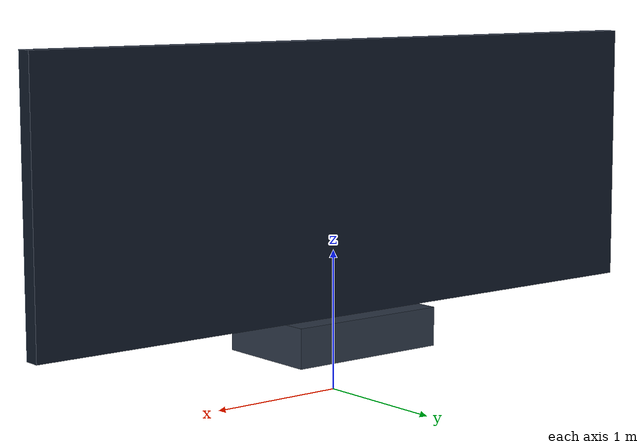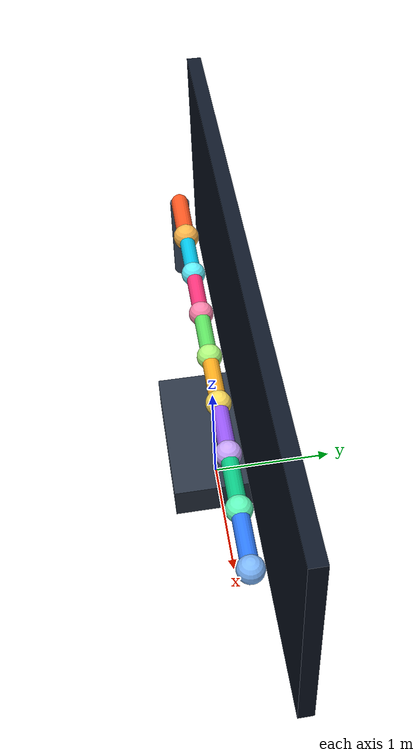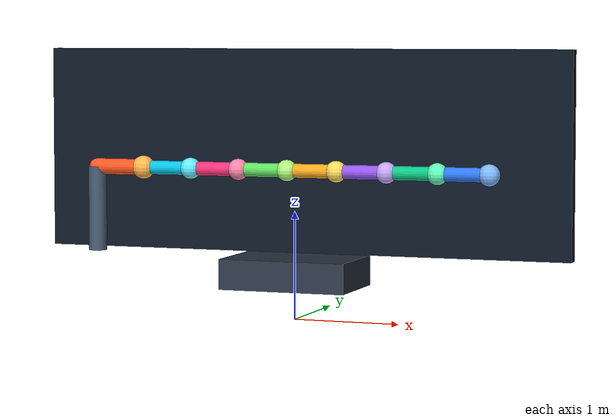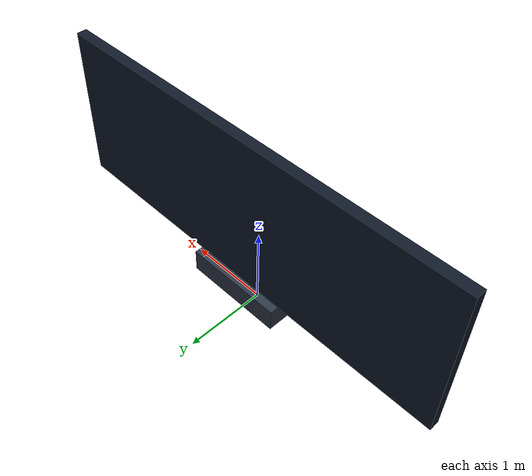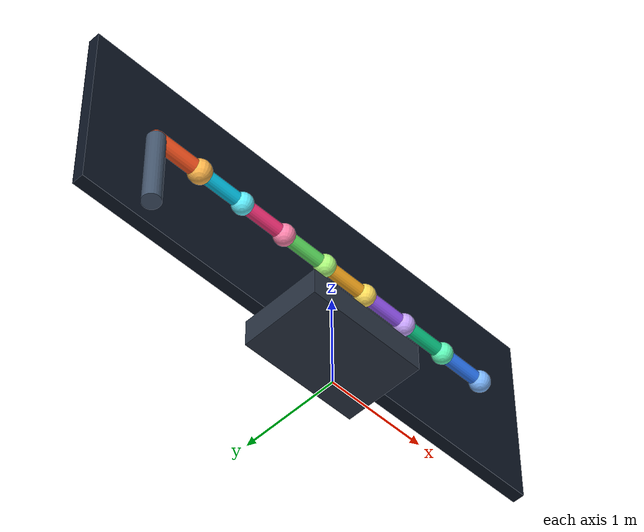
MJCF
<!-- Copyright 2026 The MuJoCo Metal contributors; Apache-2.0. -->
<mujoco model="implicit_wave_lattice">
  <compiler angle="radian" inertiafromgeom="true"/>
  <option timestep=".004" integrator="implicitfast" gravity="0 0 0">
    <flag contact="disable"/>
  </option>
  <visual>
    <global offwidth="1280" offheight="720"/>
    <headlight ambient=".72 .72 .72" diffuse=".92 .92 .92" specular=".32 .32 .32"/>
  </visual>
  <default>
    <joint damping=".06" stiffness=".65"/>
    <geom contype="0" conaffinity="0" density="360"/>
  </default>
  <worldbody>
    <light pos="0 -2 4" dir="0 0 -1" diffuse="1 .94 .82"/>
    <geom name="backdrop" type="box" pos="0 .25 1.55" size="2.55 .06 .95" rgba=".055 .09 .15 1"/>
    <geom name="base" type="box" pos="0 0 .44" size=".6 .4 .14" rgba=".17 .21 .27 1"/>
    <geom name="mast" type="cylinder" pos="-2 0 .98" size=".085 .4" rgba=".27 .34 .43 1"/>
    <body name="wave_00" pos="-2 0 1.38">
      <joint name="drive" type="hinge" axis="0 1 0" damping=".08"/>
      <geom name="link_00" type="capsule" fromto="0 0 0 .48 0 0" size=".075" rgba="1 .34 .13 1"/>
      <geom type="sphere" pos=".48 0 0" size=".11" rgba="1 .72 .3 1"/>
      <body name="wave_01" pos=".48 0 0">
        <joint name="joint_01" type="ball" damping=".045" stiffness=".72"/>
        <geom name="link_01" type="capsule" fromto="0 0 0 .48 0 0" size=".065" rgba=".02 .77 .91 1"/>
        <geom type="sphere" pos=".48 0 0" size=".10" rgba=".38 .94 1 1"/>
        <body name="wave_02" pos=".48 0 0">
          <joint name="joint_02" type="hinge" axis="0 1 0" damping=".06" stiffness=".65"/>
          <geom name="link_02" type="capsule" fromto="0 0 0 .48 0 0" size=".065" rgba=".98 .2 .48 1"/>
          <geom type="sphere" pos=".48 0 0" size=".10" rgba="1 .52 .68 1"/>
          <body name="wave_03" pos=".48 0 0">
            <joint name="joint_03" type="ball" damping=".045" stiffness=".72"/>
            <geom name="link_03" type="capsule" fromto="0 0 0 .48 0 0" size=".065" rgba=".37 .88 .38 1"/>
            <geom type="sphere" pos=".48 0 0" size=".10" rgba=".69 1 .49 1"/>
            <body name="wave_04" pos=".48 0 0">
              <joint name="joint_04" type="hinge" axis="0 1 0" damping=".06" stiffness=".65"/>
              <geom name="link_04" type="capsule" fromto="0 0 0 .48 0 0" size=".065" rgba=".98 .67 .12 1"/>
              <geom type="sphere" pos=".48 0 0" size=".10" rgba="1 .87 .36 1"/>
              <body name="wave_05" pos=".48 0 0">
                <joint name="joint_05" type="ball" damping=".045" stiffness=".72"/>
                <geom name="link_05" type="capsule" fromto="0 0 0 .48 0 0" size=".065" rgba=".59 .34 .96 1"/>
                <geom type="sphere" pos=".48 0 0" size=".10" rgba=".79 .65 1 1"/>
                <body name="wave_06" pos=".48 0 0">
                  <joint name="joint_06" type="hinge" axis="0 1 0" damping=".06" stiffness=".65"/>
                  <geom name="link_06" type="capsule" fromto="0 0 0 .48 0 0" size=".065" rgba=".04 .78 .52 1"/>
                  <geom type="sphere" pos=".48 0 0" size=".10" rgba=".38 1 .74 1"/>
                  <body name="wave_07" pos=".48 0 0">
                    <joint name="joint_07" type="ball" damping=".045" stiffness=".72"/>
                    <geom name="link_07" type="capsule" fromto="0 0 0 .48 0 0" size=".065" rgba=".18 .48 .98 1"/>
                    <geom type="sphere" pos=".48 0 0" size=".10" rgba=".49 .72 1 1"/>
                  </body>
                </body>
              </body>
            </body>
          </body>
        </body>
      </body>
    </body>
  </worldbody>
  <actuator>
    <motor name="wave_driver" joint="drive" gear="5" ctrllimited="true" ctrlrange="-.12 .12"/>
  </actuator>
</mujoco>
